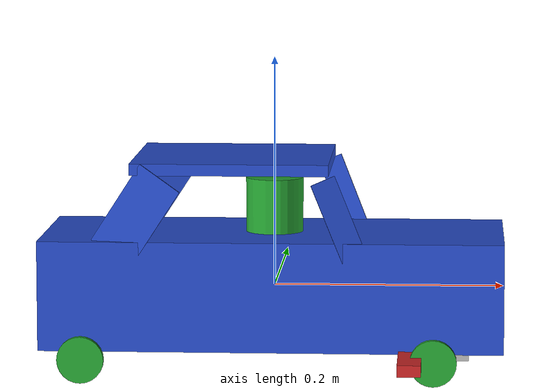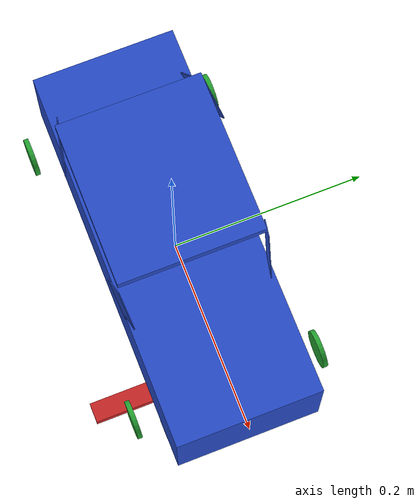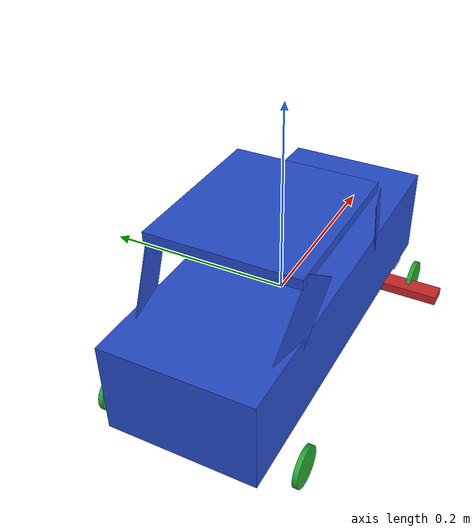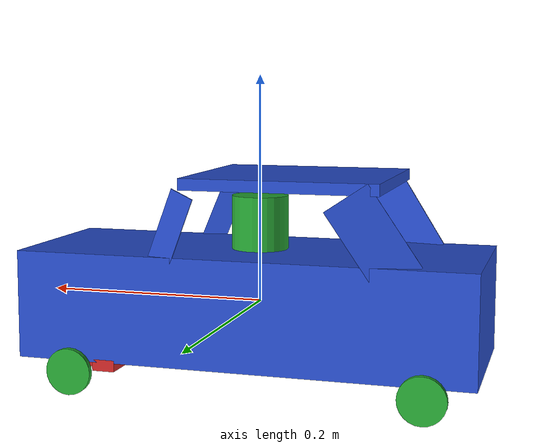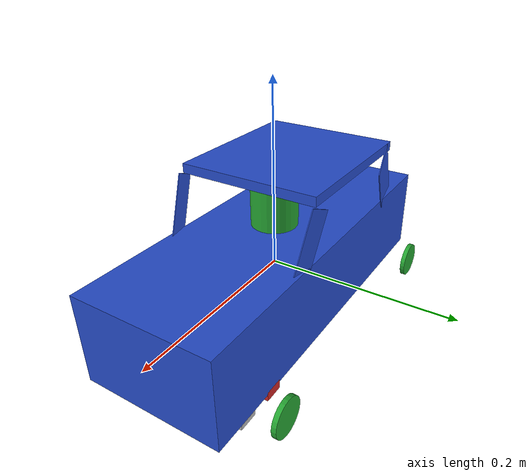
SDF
<sdf version='1.4'>
  <model name='autonomos'>
    <link name='base_link'>
      <pose>0 0 0 0 -0 0</pose>
      <inertial>
        <pose>0.00240869 0 0.0305585 0 -0 0</pose>
        <mass>0.7307</mass>
        <inertia>
          <ixx>0.612582</ixx>
          <ixy>0</ixy>
          <ixz>0.000185087</ixz>
          <iyy>0.61286</iyy>
          <iyz>0</iyz>
          <izz>0.611286</izz>
        </inertia>
      </inertial>
      <collision name='base_link_collision'>
        <pose>0 0 0 0 -0 0</pose>
        <geometry>
          <box>
            <size>0.4 0.15 0.095</size>
          </box>
        </geometry>
        <surface>
          <contact>
            <ode/>
          </contact>
          <friction>
            <ode/>
          </friction>
        </surface>
      </collision>
      <collision name='base_link_collision_base_link_1'>
        <pose>0.06 -0.074 0.065 0 -0.385398 0.2</pose>
        <geometry>
          <box>
            <size>0.022 0.001 0.08</size>
          </box>
        </geometry>
        <surface>
          <contact>
            <ode/>
          </contact>
          <friction>
            <ode/>
          </friction>
        </surface>
      </collision>
      <collision name='base_link_collision_base_link_2'>
        <pose>0.06 0.074 0.065 0 -0.385398 0.2</pose>
        <geometry>
          <box>
            <size>0.022 0.001 0.08</size>
          </box>
        </geometry>
        <surface>
          <contact>
            <ode/>
          </contact>
          <friction>
            <ode/>
          </friction>
        </surface>
      </collision>
      <collision name='base_link_collision_base_link_3'>
        <pose>-0.115 0.074 0.065 1.66502e-17 0.585398 0.2</pose>
        <geometry>
          <box>
            <size>0.042 0.001 0.08</size>
          </box>
        </geometry>
        <surface>
          <contact>
            <ode/>
          </contact>
          <friction>
            <ode/>
          </friction>
        </surface>
      </collision>
      <collision name='base_link_collision_base_link_4'>
        <pose>-0.115 -0.074 0.065 -1.66502e-17 0.585398 -0.2</pose>
        <geometry>
          <box>
            <size>0.042 0.001 0.08</size>
          </box>
        </geometry>
        <surface>
          <contact>
            <ode/>
          </contact>
          <friction>
            <ode/>
          </friction>
        </surface>
      </collision>
      <collision name='base_link_collision_base_link_5'>
        <pose>-0.035 0 0.11 1.57 -0 0</pose>
        <geometry>
          <box>
            <size>0.17 0.01 0.15</size>
          </box>
        </geometry>
        <surface>
          <contact>
            <ode/>
          </contact>
          <friction>
            <ode/>
          </friction>
        </surface>
      </collision>
      <collision name='base_link_collision_front_link'>
        <pose>0.16 0 -0.05 0 -0 0</pose>
        <geometry>
          <box>
            <size>0.02 0.15 0.005</size>
          </box>
        </geometry>
        <surface>
          <contact>
            <ode/>
          </contact>
          <friction>
            <ode/>
          </friction>
        </surface>
      </collision>
      <collision name='base_link_collision_laser_link'>
        <pose>0 0 0.07 0 -0 0</pose>
        <geometry>
          <box>
            <size>0.05 0.05 0.05</size>
          </box>
        </geometry>
        <surface>
          <contact>
            <ode/>
          </contact>
          <friction>
            <ode/>
          </friction>
        </surface>
        <surface>
          <contact>
            <ode/>
          </contact>
          <friction>
            <ode/>
          </friction>
        </surface>
        <surface>
          <contact>
            <ode/>
          </contact>
          <friction>
            <ode/>
          </friction>
        </surface>
      </collision>
      <visual name='base_link_visual'>
        <pose>0 0 0 0 -0 0</pose>
        <geometry>
          <box>
            <size>0.4 0.15 0.095</size>
          </box>
        </geometry>
        <material>
          <script>
            <name>Gazebo/Blue</name>
            <uri>__default__</uri>
          </script>
        </material>
      </visual>
      <visual name='base_link_visual_base_link_1'>
        <pose>0.06 -0.075 0.065 0 -0.385398 0.2</pose>
        <geometry>
          <box>
            <size>0.022 0.001 0.08</size>
          </box>
        </geometry>
        <material>
          <script>
            <name>Gazebo/Blue</name>
            <uri>__default__</uri>
          </script>
        </material>
      </visual>
      <visual name='base_link_visual_base_link_2'>
        <pose>0.06 0.074 0.065 0 -0.385398 -0.2</pose>
        <geometry>
          <box>
            <size>0.022 0.001 0.08</size>
          </box>
        </geometry>
        <material>
          <script>
            <name>Gazebo/Blue</name>
            <uri>__default__</uri>
          </script>
        </material>
      </visual>
      <visual name='base_link_visual_base_link_3'>
        <pose>-0.115 0.074 0.07 1.66502e-17 0.585398 0.2</pose>
        <geometry>
          <box>
            <size>0.042 0.001 0.08</size>
          </box>
        </geometry>
        <material>
          <script>
            <name>Gazebo/Blue</name>
            <uri>__default__</uri>
          </script>
        </material>
      </visual>
      <visual name='base_link_visual_base_link_4'>
        <pose>-0.115 -0.074 0.07 -1.66502e-17 0.585398 -0.2</pose>
        <geometry>
          <box>
            <size>0.042 0.001 0.08</size>
          </box>
        </geometry>
        <material>
          <script>
            <name>Gazebo/Blue</name>
            <uri>__default__</uri>
          </script>
        </material>
      </visual>
      <visual name='base_link_visual_base_link_5'>
        <pose>-0.035 0 0.11 1.57 -0 0</pose>
        <geometry>
          <box>
            <size>0.17 0.01 0.15</size>
          </box>
        </geometry>
        <material>
          <script>
            <name>Gazebo/Blue</name>
            <uri>__default__</uri>
          </script>
        </material>
      </visual>
      <visual name='base_link_visual_front_link'>
        <pose>0.16 0 -0.05 0 -0 0</pose>
        <geometry>
          <box>
            <size>0.02 0.15 0.005</size>
          </box>
        </geometry>
      </visual>
      <visual name='base_link_visual_laser_link'>
        <pose>0 0 0.07 0 -0 0</pose>
        <geometry>
          <cylinder>
            <length>0.05</length>
            <radius>0.025</radius>
          </cylinder>
        </geometry>
        <material>
          <script>
            <name>Gazebo/Green</name>
            <uri>__default__</uri>
          </script>
        </material>
      </visual>
      <velocity_decay>
        <linear>0</linear>
        <angular>0</angular>
      </velocity_decay>
      <velocity_decay>
        <linear>0</linear>
        <angular>0</angular>
      </velocity_decay>
      <gravity>1</gravity>
      <velocity_decay>
        <linear>0</linear>
        <angular>0</angular>
      </velocity_decay>
      <self_collide>0</self_collide>
      <sensor name='laser' type='ray'>
        <ray>
          <scan>
            <horizontal>
              <samples>360</samples>
              <resolution>1</resolution>
              <min_angle>0</min_angle>
              <max_angle>6.28319</max_angle>
            </horizontal>
          </scan>
          <range>
            <min>0.08</min>
            <max>3</max>
            <resolution>0.01</resolution>
          </range>
        </ray>
        <plugin name='laser' filename='libgazebo_ros_laser.so'>
          <robotNamespace>autonomos</robotNamespace>
          <topicName>/scan</topicName>
          <frameName>map</frameName>
        </plugin>
        <always_on>1</always_on>
        <update_rate>1</update_rate>
        <visualize>1</visualize>
        <pose>0 0 0.07 0 -0 0</pose>
      </sensor>
    </link>
    <link name='back_left_wheel_link'>
      <pose>-0.16 0.1 -0.05 1.57 -0 0</pose>
      <inertial>
        <pose>0 0 0 0 -0 0</pose>
        <mass>0.001</mass>
        <inertia>
          <ixx>0.001</ixx>
          <ixy>0</ixy>
          <ixz>0</ixz>
          <iyy>0.001</iyy>
          <iyz>0</iyz>
          <izz>0.001</izz>
        </inertia>
      </inertial>
      <collision name='back_left_wheel_link_collision'>
        <pose>0 0 0 0 -0 0</pose>
        <geometry>
          <cylinder>
            <length>0.005</length>
            <radius>0.02</radius>
          </cylinder>
        </geometry>
        <surface>
          <contact>
            <ode/>
          </contact>
          <friction>
            <ode/>
          </friction>
        </surface>
      </collision>
      <visual name='back_left_wheel_link_visual'>
        <pose>0 0 0 0 -0 0</pose>
        <geometry>
          <cylinder>
            <length>0.005</length>
            <radius>0.02</radius>
          </cylinder>
        </geometry>
        <material>
          <script>
            <name>Gazebo/Green</name>
            <uri>__default__</uri>
          </script>
        </material>
      </visual>
      <gravity>1</gravity>
      <velocity_decay>
        <linear>0</linear>
        <angular>0</angular>
      </velocity_decay>
      <self_collide>0</self_collide>
    </link>
    <joint name='back_left_wheel_joint' type='revolute'>
      <child>back_left_wheel_link</child>
      <parent>base_link</parent>
      <axis>
        <xyz>0 -1 0.000796327</xyz>
        <limit>
          <lower>-3.14</lower>
          <upper>3.14</upper>
          <effort>300</effort>
          <velocity>1</velocity>
        </limit>
        <dynamics/>
      </axis>
    </joint>
    <link name='back_right_wheel_link'>
      <pose>-0.16 -0.1 -0.05 1.57 -0 0</pose>
      <inertial>
        <pose>0 0 0 0 -0 0</pose>
        <mass>0.001</mass>
        <inertia>
          <ixx>0.001</ixx>
          <ixy>0</ixy>
          <ixz>0</ixz>
          <iyy>0.001</iyy>
          <iyz>0</iyz>
          <izz>0.001</izz>
        </inertia>
      </inertial>
      <collision name='back_right_wheel_link_collision'>
        <pose>0 0 0 0 -0 0</pose>
        <geometry>
          <cylinder>
            <length>0.005</length>
            <radius>0.02</radius>
          </cylinder>
        </geometry>
        <surface>
          <contact>
            <ode/>
          </contact>
          <friction>
            <ode/>
          </friction>
        </surface>
      </collision>
      <visual name='back_right_wheel_link_visual'>
        <pose>0 0 0 0 -0 0</pose>
        <geometry>
          <cylinder>
            <length>0.005</length>
            <radius>0.02</radius>
          </cylinder>
        </geometry>
        <material>
          <script>
            <name>Gazebo/Green</name>
            <uri>__default__</uri>
          </script>
        </material>
      </visual>
      <gravity>1</gravity>
      <velocity_decay>
        <linear>0</linear>
        <angular>0</angular>
      </velocity_decay>
      <self_collide>0</self_collide>
    </link>
    <joint name='back_right_wheel_joint' type='revolute'>
      <child>back_right_wheel_link</child>
      <parent>base_link</parent>
      <axis>
        <xyz>0 -1 0.000796327</xyz>
        <limit>
          <lower>-3.14</lower>
          <upper>3.14</upper>
          <effort>300</effort>
          <velocity>1</velocity>
        </limit>
        <dynamics/>
      </axis>
    </joint>
    <link name='front_left_bar_link'>
      <pose>0.14 0.06 -0.05 0 -0 0</pose>
      <inertial>
        <pose>0 0 0 0 -0 0</pose>
        <mass>0.001</mass>
        <inertia>
          <ixx>0.001</ixx>
          <ixy>0</ixy>
          <ixz>0</ixz>
          <iyy>0.001</iyy>
          <iyz>0</iyz>
          <izz>0.001</izz>
        </inertia>
      </inertial>
      <collision name='front_left_bar_link_collision'>
        <pose>0 0 0 0 -0 0</pose>
        <geometry>
          <box>
            <size>0.04 0.02 0.005</size>
          </box>
        </geometry>
        <surface>
          <contact>
            <ode/>
          </contact>
          <friction>
            <ode/>
          </friction>
        </surface>
      </collision>
      <visual name='front_left_bar_link_visual'>
        <pose>0 0 0 0 -0 0</pose>
        <geometry>
          <box>
            <size>0.04 0.02 0.005</size>
          </box>
        </geometry>
        <material>
          <script>
            <name>Gazebo/Red</name>
            <uri>__default__</uri>
          </script>
        </material>
      </visual>
      <gravity>1</gravity>
      <velocity_decay>
        <linear>0</linear>
        <angular>0</angular>
      </velocity_decay>
      <self_collide>0</self_collide>
    </link>
    <joint name='front_left_bar_joint' type='revolute'>
      <child>front_left_bar_link</child>
      <parent>base_link</parent>
      <axis>
        <xyz>0 0 1</xyz>
        <limit>
          <lower>-0.5</lower>
          <upper>0.5</upper>
          <effort>300</effort>
          <velocity>1</velocity>
        </limit>
        <dynamics/>
      </axis>
    </joint>
    <link name='ackermann_bar_link'>
      <pose>0.12 0 -0.05 0 -0 0</pose>
      <inertial>
        <pose>0 0 0 0 -0 0</pose>
        <mass>0.001</mass>
        <inertia>
          <ixx>0.001</ixx>
          <ixy>0</ixy>
          <ixz>0</ixz>
          <iyy>0.001</iyy>
          <iyz>0</iyz>
          <izz>0.001</izz>
        </inertia>
      </inertial>
      <collision name='ackermann_bar_link_collision'>
        <pose>0 0 0 0 -0 0</pose>
        <geometry>
          <box>
            <size>0.02 0.15 0.01</size>
          </box>
        </geometry>
        <surface>
          <contact>
            <ode/>
          </contact>
          <friction>
            <ode/>
          </friction>
        </surface>
      </collision>
      <visual name='ackermann_bar_link_visual'>
        <pose>0 0 0 0 -0 0</pose>
        <geometry>
          <box>
            <size>0.02 0.15 0.01</size>
          </box>
        </geometry>
        <material>
          <script>
            <name>Gazebo/Red</name>
            <uri>__default__</uri>
          </script>
        </material>
      </visual>
      <gravity>1</gravity>
      <velocity_decay>
        <linear>0</linear>
        <angular>0</angular>
      </velocity_decay>
      <self_collide>0</self_collide>
    </link>
    <joint name='ackermann_left_bar_joint' type='revolute'>
      <child>ackermann_bar_link</child>
      <parent>front_left_bar_link</parent>
      <axis>
        <xyz>0 0 1</xyz>
        <limit>
          <lower>-1e+16</lower>
          <upper>1e+16</upper>
          <effort>300</effort>
          <velocity>1</velocity>
        </limit>
        <dynamics/>
      </axis>
    </joint>
    <link name='front_left_wheel_link'>
      <pose>0.14 0.1 -0.05 1.57 -0 0</pose>
      <inertial>
        <pose>0 0 0 0 -0 0</pose>
        <mass>0.001</mass>
        <inertia>
          <ixx>0.001</ixx>
          <ixy>0</ixy>
          <ixz>0</ixz>
          <iyy>0.001</iyy>
          <iyz>0</iyz>
          <izz>0.001</izz>
        </inertia>
      </inertial>
      <collision name='front_left_wheel_link_collision'>
        <pose>0 0 0 0 -0 0</pose>
        <geometry>
          <cylinder>
            <length>0.005</length>
            <radius>0.02</radius>
          </cylinder>
        </geometry>
        <surface>
          <contact>
            <ode/>
          </contact>
          <friction>
            <ode/>
          </friction>
        </surface>
      </collision>
      <visual name='front_left_wheel_link_visual'>
        <pose>0 0 0 0 -0 0</pose>
        <geometry>
          <cylinder>
            <length>0.005</length>
            <radius>0.02</radius>
          </cylinder>
        </geometry>
        <material>
          <script>
            <name>Gazebo/Green</name>
            <uri>__default__</uri>
          </script>
        </material>
      </visual>
      <gravity>1</gravity>
      <velocity_decay>
        <linear>0</linear>
        <angular>0</angular>
      </velocity_decay>
      <self_collide>0</self_collide>
    </link>
    <joint name='front_left_wheel_joint' type='revolute'>
      <child>front_left_wheel_link</child>
      <parent>front_left_bar_link</parent>
      <axis>
        <xyz>0 -1 0.000796327</xyz>
        <limit>
          <lower>-3.14</lower>
          <upper>3.14</upper>
          <effort>300</effort>
          <velocity>1</velocity>
        </limit>
        <dynamics/>
      </axis>
    </joint>
    <link name='front_right_bar_link'>
      <pose>0.14 -0.06 -0.05 0 -0 0</pose>
      <inertial>
        <pose>0 0 0 0 -0 0</pose>
        <mass>0.001</mass>
        <inertia>
          <ixx>0.001</ixx>
          <ixy>0</ixy>
          <ixz>0</ixz>
          <iyy>0.001</iyy>
          <iyz>0</iyz>
          <izz>0.001</izz>
        </inertia>
      </inertial>
      <collision name='front_right_bar_link_collision'>
        <pose>0 0 0 0 -0 0</pose>
        <geometry>
          <box>
            <size>0.04 0.02 0.005</size>
          </box>
        </geometry>
        <surface>
          <contact>
            <ode/>
          </contact>
          <friction>
            <ode/>
          </friction>
        </surface>
      </collision>
      <visual name='front_right_bar_link_visual'>
        <pose>0 0 0 0 -0 0</pose>
        <geometry>
          <box>
            <size>0.04 0.02 0.005</size>
          </box>
        </geometry>
        <material>
          <script>
            <name>Gazebo/Red</name>
            <uri>__default__</uri>
          </script>
        </material>
      </visual>
      <gravity>1</gravity>
      <velocity_decay>
        <linear>0</linear>
        <angular>0</angular>
      </velocity_decay>
      <self_collide>0</self_collide>
    </link>
    <joint name='front_right_bar_joint' type='revolute'>
      <child>front_right_bar_link</child>
      <parent>base_link</parent>
      <axis>
        <xyz>0 0 1</xyz>
        <limit>
          <lower>-0.5</lower>
          <upper>0.5</upper>
          <effort>300</effort>
          <velocity>1</velocity>
        </limit>
        <dynamics/>
      </axis>
    </joint>
    <link name='front_right_wheel_link'>
      <pose>0.14 -0.1 -0.05 1.57 -0 0</pose>
      <inertial>
        <pose>0 0 0 0 -0 0</pose>
        <mass>0.001</mass>
        <inertia>
          <ixx>0.001</ixx>
          <ixy>0</ixy>
          <ixz>0</ixz>
          <iyy>0.001</iyy>
          <iyz>0</iyz>
          <izz>0.001</izz>
        </inertia>
      </inertial>
      <collision name='front_right_wheel_link_collision'>
        <pose>0 0 0 0 -0 0</pose>
        <geometry>
          <cylinder>
            <length>0.005</length>
            <radius>0.02</radius>
          </cylinder>
        </geometry>
        <surface>
          <contact>
            <ode/>
          </contact>
          <friction>
            <ode/>
          </friction>
        </surface>
      </collision>
      <visual name='front_right_wheel_link_visual'>
        <pose>0 0 0 0 -0 0</pose>
        <geometry>
          <cylinder>
            <length>0.005</length>
            <radius>0.02</radius>
          </cylinder>
        </geometry>
        <material>
          <script>
            <name>Gazebo/Green</name>
            <uri>__default__</uri>
          </script>
        </material>
      </visual>
      <gravity>1</gravity>
      <velocity_decay>
        <linear>0</linear>
        <angular>0</angular>
      </velocity_decay>
      <self_collide>0</self_collide>
    </link>
    <joint name='front_right_wheel_joint' type='revolute'>
      <child>front_right_wheel_link</child>
      <parent>front_right_bar_link</parent>
      <axis>
        <xyz>0 -1 0.000796327</xyz>
        <limit>
          <lower>-3.14</lower>
          <upper>3.14</upper>
          <effort>300</effort>
          <velocity>1</velocity>
        </limit>
        <dynamics/>
      </axis>
    </joint>
    <link name='steer_link'>
      <pose>0.14 0 -0.05 0 -0 0</pose>
      <inertial>
        <pose>0 0 0 0 -0 0</pose>
        <mass>0.001</mass>
        <inertia>
          <ixx>0.001</ixx>
          <ixy>0</ixy>
          <ixz>0</ixz>
          <iyy>0.001</iyy>
          <iyz>0</iyz>
          <izz>0.001</izz>
        </inertia>
      </inertial>
      <collision name='steer_link_collision'>
        <pose>0 0 0 0 -0 0</pose>
        <geometry>
          <box>
            <size>0.04 0.02 0.005</size>
          </box>
        </geometry>
        <surface>
          <contact>
            <ode/>
          </contact>
          <friction>
            <ode/>
          </friction>
        </surface>
      </collision>
      <visual name='steer_link_visual'>
        <pose>0 0 0 0 -0 0</pose>
        <geometry>
          <box>
            <size>0.04 0.02 0.005</size>
          </box>
        </geometry>
        <material>
          <script>
            <name>Gazebo/Red</name>
            <uri>__default__</uri>
          </script>
        </material>
      </visual>
      <gravity>1</gravity>
      <velocity_decay>
        <linear>0</linear>
        <angular>0</angular>
      </velocity_decay>
      <self_collide>0</self_collide>
    </link>
    <joint name='steer_joint' type='revolute'>
      <child>steer_link</child>
      <parent>base_link</parent>
      <axis>
        <xyz>0 0 1</xyz>
        <limit>
          <lower>-0.5</lower>
          <upper>0.5</upper>
          <effort>300</effort>
          <velocity>1</velocity>
        </limit>
        <dynamics/>
      </axis>
    </joint>
    <link name='ackermann_bar_link'>
      <pose>0.12 -0.06 -0.05 0 -0 0</pose>
      <inertial>
        <pose>0 0 0 0 -0 0</pose>
        <mass>0.001</mass>
        <inertia>
          <ixx>0.001</ixx>
          <ixy>0</ixy>
          <ixz>0</ixz>
          <iyy>0.001</iyy>
          <iyz>0</iyz>
          <izz>0.001</izz>
        </inertia>
      </inertial>
      <collision name='ackermann_bar_link_collision'>
        <pose>0 0 0 0 -0 0</pose>
        <geometry>
          <box>
            <size>0.02 0.15 0.01</size>
          </box>
        </geometry>
        <surface>
          <contact>
            <ode/>
          </contact>
          <friction>
            <ode/>
          </friction>
        </surface>
      </collision>
      <visual name='ackermann_bar_link_visual'>
        <pose>0 0 0 0 -0 0</pose>
        <geometry>
          <box>
            <size>0.02 0.15 0.01</size>
          </box>
        </geometry>
        <material>
          <script>
            <name>Gazebo/Red</name>
            <uri>__default__</uri>
          </script>
        </material>
      </visual>
      <gravity>1</gravity>
      <velocity_decay>
        <linear>0</linear>
        <angular>0</angular>
      </velocity_decay>
      <self_collide>0</self_collide>
    </link>
    <joint name='ackermann_left_bar_joint' type='revolute'>
      <child>ackermann_bar_link</child>
      <parent>front_left_bar_link</parent>
      <axis>
        <xyz>0 0 1</xyz>
        <limit>
          <lower>-1e+16</lower>
          <upper>1e+16</upper>
          <effort>300</effort>
          <velocity>1</velocity>
        </limit>
        <dynamics/>
      </axis>
    </joint>
  </model>
</sdf>
